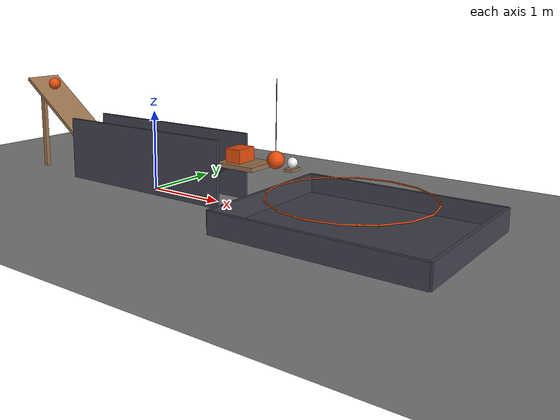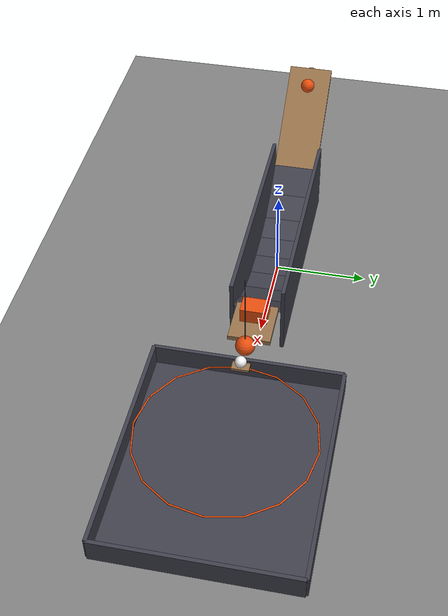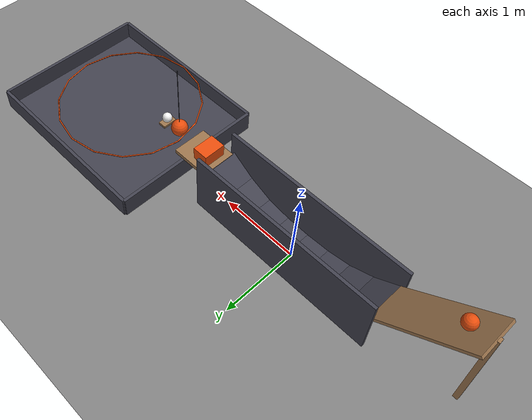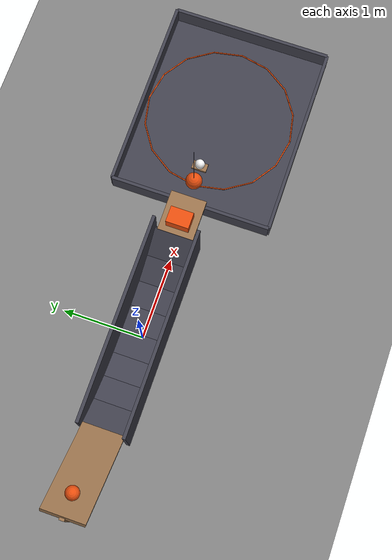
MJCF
<mujoco model="halfpipe_striker_chain">
  <compiler angle="radian"/>
  <option timestep="0.002"/>
  <worldbody>
    <geom name="floor" type="plane" size="10 10 0.1" friction="0.8 0.01 0.005"/>
    <body name="halfpipe">
      <geom name="halfpipe_near_upper_deck" type="box" pos="-1.05 0 0.43" size="0.180278 0.25 0.02" euler="0 0.588003 0" friction="0.35 0.001 0.0002" solref="0.01 1" rgba="0.25 0.25 0.3 1"/>
      <geom name="halfpipe_near_middle_deck" type="box" pos="-0.75 0 0.265" size="0.163478 0.25 0.02" euler="0 0.408908 0" friction="0.35 0.001 0.0002" solref="0.01 1" rgba="0.25 0.25 0.3 1"/>
      <geom name="halfpipe_near_lower_deck" type="box" pos="-0.45 0 0.1725" size="0.1525 0.25 0.02" euler="0 0.18132 0" friction="0.35 0.001 0.0002" solref="0.01 1" rgba="0.25 0.25 0.3 1"/>
      <geom name="halfpipe_near_bottom_deck" type="box" pos="-0.15 0 0.1375" size="0.150187 0.25 0.02" euler="0 0.0499584 0" friction="0.35 0.001 0.0002" solref="0.01 1" rgba="0.25 0.25 0.3 1"/>
      <geom name="halfpipe_far_bottom_deck" type="box" pos="0.15 0 0.1375" size="0.150187 0.25 0.02" euler="0 -0.0499584 0" friction="0.35 0.001 0.0002" solref="0.01 1" rgba="0.25 0.25 0.3 1"/>
      <geom name="halfpipe_far_lower_deck" type="box" pos="0.45 0 0.1725" size="0.1525 0.25 0.02" euler="0 -0.18132 0" friction="0.35 0.001 0.0002" solref="0.01 1" rgba="0.25 0.25 0.3 1"/>
      <geom name="halfpipe_far_middle_deck" type="box" pos="0.75 0 0.265" size="0.163478 0.25 0.02" euler="0 -0.408908 0" friction="0.35 0.001 0.0002" solref="0.01 1" rgba="0.25 0.25 0.3 1"/>
      <geom name="halfpipe_far_upper_deck" type="box" pos="1.05 0 0.43" size="0.180278 0.25 0.02" euler="0 -0.588003 0" friction="0.35 0.001 0.0002" solref="0.01 1" rgba="0.25 0.25 0.3 1"/>
      <geom name="halfpipe_left_rail" type="box" pos="0 0.27 0.42" size="1.24 0.02 0.4" friction="0.35 0.001 0.0002" solref="0.01 1" rgba="0.25 0.25 0.3 1"/>
      <geom name="halfpipe_right_rail" type="box" pos="0 -0.27 0.42" size="1.24 0.02 0.4" friction="0.35 0.001 0.0002" solref="0.01 1" rgba="0.25 0.25 0.3 1"/>
    </body>
    <body name="ramp">
      <geom name="ramp_deck" type="box" pos="-1.7 0 0.905" size="0.625 0.25 0.02" euler="0 0.643501 0" friction="0.35 0.001 0.0002" solref="0.01 1" rgba="0.6 0.45 0.3 1"/>
      <geom name="ramp_leg" type="box" pos="-2.2 0 0.64" size="0.03 0.03 0.64" friction="0.35 0.001 0.0002" solref="0.01 1" rgba="0.6 0.45 0.3 1"/>
    </body>
    <body name="ball1" pos="-1.94 0 1.21">
      <freejoint/>
      <geom name="ball1" type="sphere" pos="0 0 0" size="0.08" mass="0.6" condim="6" friction="0.35 0.001 0.0002" solref="0.01 1" rgba="0.9 0.3 0.05 1"/>
    </body>
    <body name="striker platform">
      <geom name="striker platform" type="box" pos="1.43 0 0.525" size="0.25 0.22 0.025" friction="0.1 0.001 0.0002" solref="0.01 1" rgba="0.6 0.45 0.3 1"/>
    </body>
    <body name="block" pos="1.35 0 0.63">
      <freejoint/>
      <geom name="block" type="box" pos="0 0 0" size="0.1 0.14 0.08" mass="0.35" friction="0.1 0.001 0.0002" solref="0.01 1" rgba="0.9 0.3 0.05 1"/>
    </body>
    <body name="pendulum" pos="1.85 0 1.53">
      <joint name="pendulum_hinge" type="hinge" pos="0 0 0" axis="0 1 0" limited="true" range="-1.74533 0.174533" damping="0.006"/>
      <geom name="pendulum" type="sphere" pos="0 0 -0.9" size="0.1" mass="0.45" friction="0.15 0.001 0.0002" solref="0.01 1" rgba="0.9 0.3 0.05 1"/>
      <geom name="pendulum rod" type="capsule" size="0.004" fromto="0 0 0 0 0 -0.8" mass="0.02" rgba="0.25 0.25 0.3 1"/>
    </body>
    <body name="target perch">
      <geom name="target perch" type="box" pos="2.07 0 0.555" size="0.05 0.09 0.015" friction="0.08 0.001 0.0002" solref="0.01 1" rgba="0.6 0.45 0.3 1"/>
    </body>
    <body name="ball2" pos="2.07 0 0.63">
      <freejoint/>
      <geom name="ball2" type="sphere" pos="0 0 0" size="0.06" mass="0.2" condim="6" friction="0.15 0.005 0.005" solref="0.01 1" rgba="0.95 0.95 0.95 1"/>
    </body>
    <body name="hoop">
      <geom name="hoop_00" type="capsule" size="0.008" fromto="3.708 0 0.35 3.63888 0.347477 0.35" solref="0.01 1" rgba="0.9 0.3 0.05 1"/>
      <geom name="hoop_01" type="capsule" size="0.008" fromto="3.63888 0.347477 0.35 3.44205 0.642053 0.35" solref="0.01 1" rgba="0.9 0.3 0.05 1"/>
      <geom name="hoop_02" type="capsule" size="0.008" fromto="3.44205 0.642053 0.35 3.14748 0.838883 0.35" solref="0.01 1" rgba="0.9 0.3 0.05 1"/>
      <geom name="hoop_03" type="capsule" size="0.008" fromto="3.14748 0.838883 0.35 2.8 0.908 0.35" solref="0.01 1" rgba="0.9 0.3 0.05 1"/>
      <geom name="hoop_04" type="capsule" size="0.008" fromto="2.8 0.908 0.35 2.45252 0.838883 0.35" solref="0.01 1" rgba="0.9 0.3 0.05 1"/>
      <geom name="hoop_05" type="capsule" size="0.008" fromto="2.45252 0.838883 0.35 2.15795 0.642053 0.35" solref="0.01 1" rgba="0.9 0.3 0.05 1"/>
      <geom name="hoop_06" type="capsule" size="0.008" fromto="2.15795 0.642053 0.35 1.96112 0.347477 0.35" solref="0.01 1" rgba="0.9 0.3 0.05 1"/>
      <geom name="hoop_07" type="capsule" size="0.008" fromto="1.96112 0.347477 0.35 1.892 1.11198e-16 0.35" solref="0.01 1" rgba="0.9 0.3 0.05 1"/>
      <geom name="hoop_08" type="capsule" size="0.008" fromto="1.892 1.11198e-16 0.35 1.96112 -0.347477 0.35" solref="0.01 1" rgba="0.9 0.3 0.05 1"/>
      <geom name="hoop_09" type="capsule" size="0.008" fromto="1.96112 -0.347477 0.35 2.15795 -0.642053 0.35" solref="0.01 1" rgba="0.9 0.3 0.05 1"/>
      <geom name="hoop_10" type="capsule" size="0.008" fromto="2.15795 -0.642053 0.35 2.45252 -0.838883 0.35" solref="0.01 1" rgba="0.9 0.3 0.05 1"/>
      <geom name="hoop_11" type="capsule" size="0.008" fromto="2.45252 -0.838883 0.35 2.8 -0.908 0.35" solref="0.01 1" rgba="0.9 0.3 0.05 1"/>
      <geom name="hoop_12" type="capsule" size="0.008" fromto="2.8 -0.908 0.35 3.14748 -0.838883 0.35" solref="0.01 1" rgba="0.9 0.3 0.05 1"/>
      <geom name="hoop_13" type="capsule" size="0.008" fromto="3.14748 -0.838883 0.35 3.44205 -0.642053 0.35" solref="0.01 1" rgba="0.9 0.3 0.05 1"/>
      <geom name="hoop_14" type="capsule" size="0.008" fromto="3.44205 -0.642053 0.35 3.63888 -0.347477 0.35" solref="0.01 1" rgba="0.9 0.3 0.05 1"/>
      <geom name="hoop_15" type="capsule" size="0.008" fromto="3.63888 -0.347477 0.35 3.708 -2.22396e-16 0.35" solref="0.01 1" rgba="0.9 0.3 0.05 1"/>
    </body>
    <body name="cup">
      <geom name="cup_base" type="box" pos="2.9 0 0.015" size="1.2 1 0.015" friction="0.9 0.02 0.015" solref="0.01 1" rgba="0.25 0.25 0.3 1"/>
      <geom name="cup_near_wall" type="box" pos="1.7 0 0.13" size="0.02 1 0.13" friction="0.9 0.02 0.015" solref="0.01 1" rgba="0.25 0.25 0.3 1"/>
      <geom name="cup_far_wall" type="box" pos="4.1 0 0.13" size="0.02 1 0.13" friction="0.9 0.02 0.015" solref="0.01 1" rgba="0.25 0.25 0.3 1"/>
      <geom name="cup_left_wall" type="box" pos="2.9 1 0.13" size="1.2 0.02 0.13" friction="0.9 0.02 0.015" solref="0.01 1" rgba="0.25 0.25 0.3 1"/>
      <geom name="cup_right_wall" type="box" pos="2.9 -1 0.13" size="1.2 0.02 0.13" friction="0.9 0.02 0.015" solref="0.01 1" rgba="0.25 0.25 0.3 1"/>
    </body>
  </worldbody>
  <keyframe>
    <key name="start" qpos="-1.94 0 1.21 1 0 0 0 1.35 0 0.63 1 0 0 0 0 2.07 0 0.63 1 0 0 0" qvel="0 0 0 0 0 0 0 0 0 0 0 0 0 0 0 0 0 0 0"/>
  </keyframe>
</mujoco>
